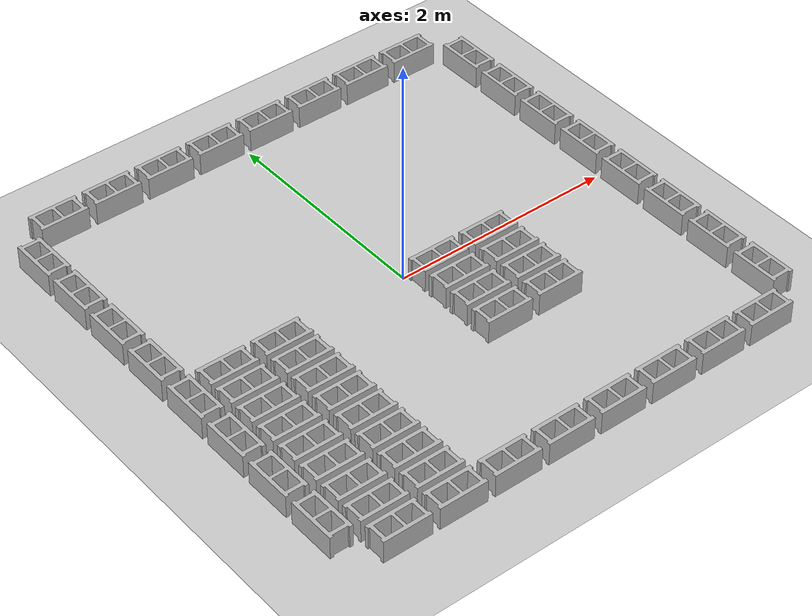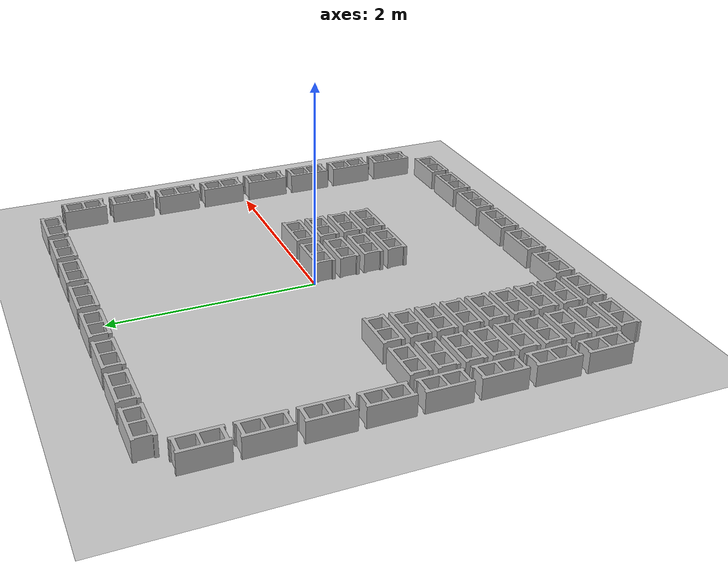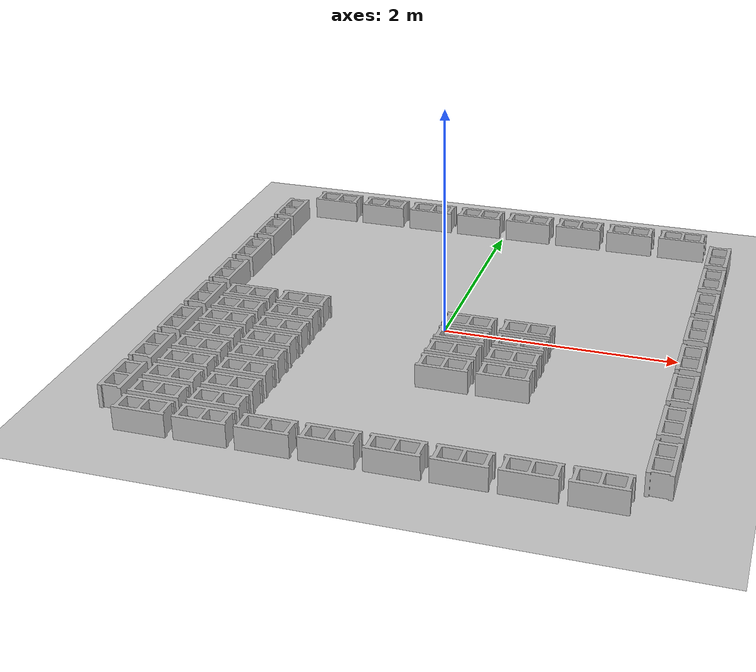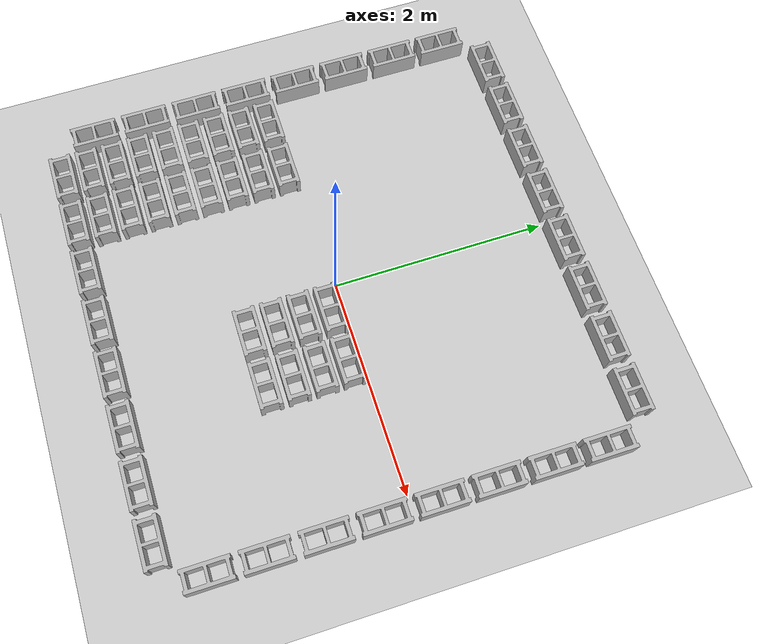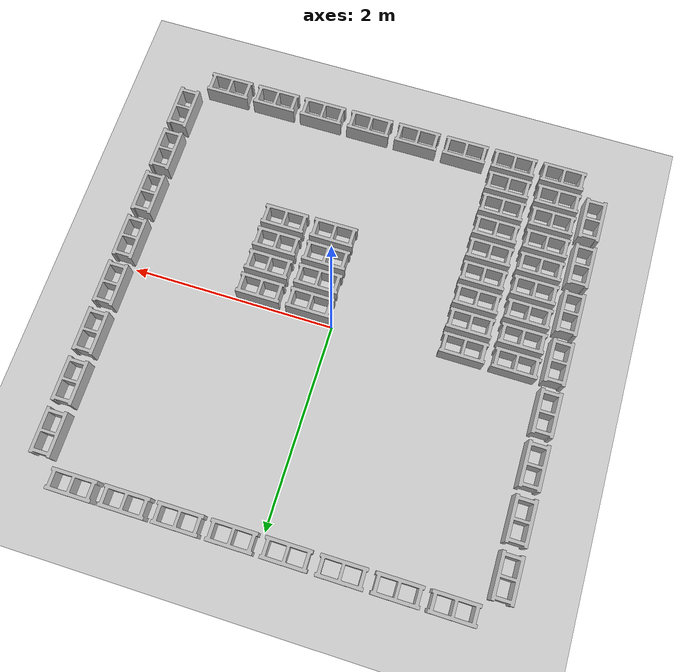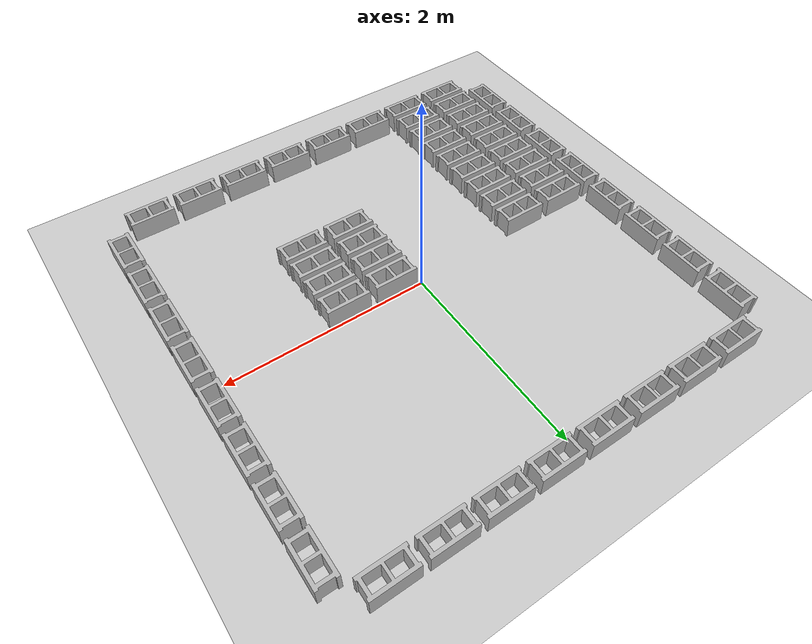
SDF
<?xml version="1.0" ?>
<sdf version='1.4'>
  <world name='default'>
    <!-- A global light source -->
    <include>
      <uri>model://sun</uri>
    </include>
    <!-- A ground plane -->
    <include>
      <uri>model://ground_plane</uri>
    </include>
    <!-- Own physics settings to speed up simulation -->
    <physics type='ode'>
      <max_step_size>0.01</max_step_size>
      <real_time_factor>1</real_time_factor>
      <real_time_update_rate>100</real_time_update_rate>
      <gravity>0 0 -9.8</gravity>
    </physics>
    <scene>
      <ambient>0.4 0.4 0.4 1</ambient>
      <background>0.7 0.7 0.7 1</background>
      <shadows>1</shadows>
    </scene>
    <spherical_coordinates>
      <surface_model>EARTH_WGS84</surface_model>
      <latitude_deg>0</latitude_deg>
      <longitude_deg>0</longitude_deg>
      <elevation>0</elevation>
      <heading_deg>0</heading_deg>
    </spherical_coordinates>
    <!-- INSERT: Bound and Obstacles here -->
    <model name='cinder_block_bound_1'>
      <include>
        <uri>model://cinder_block</uri>
      </include>
      <pose>-1.75 2.125 0 0 0 0</pose>
      <static>1</static>
    </model>
    <model name='cinder_block_bound_2'>
      <include>
        <uri>model://cinder_block</uri>
      </include>
      <pose>-1.25 2.125 0 0 0 0</pose>
      <static>1</static>
    </model>
    <model name='cinder_block_bound_3'>
      <include>
        <uri>model://cinder_block</uri>
      </include>
      <pose>-0.75 2.125 0 0 0 0</pose>
      <static>1</static>
    </model>
    <model name='cinder_block_bound_4'>
      <include>
        <uri>model://cinder_block</uri>
      </include>
      <pose>-0.25 2.125 0 0 0 0</pose>
      <static>1</static>
    </model>
    <model name='cinder_block_bound_5'>
      <include>
        <uri>model://cinder_block</uri>
      </include>
      <pose>0.25 2.125 0 0 0 0</pose>
      <static>1</static>
    </model>
    <model name='cinder_block_bound_6'>
      <include>
        <uri>model://cinder_block</uri>
      </include>
      <pose>0.75 2.125 0 0 0 0</pose>
      <static>1</static>
    </model>
    <model name='cinder_block_bound_7'>
      <include>
        <uri>model://cinder_block</uri>
      </include>
      <pose>1.25 2.125 0 0 0 0</pose>
      <static>1</static>
    </model>
    <model name='cinder_block_bound_8'>
      <include>
        <uri>model://cinder_block</uri>
      </include>
      <pose>1.75 2.125 0 0 0 0</pose>
      <static>1</static>
    </model>
    <model name='cinder_block_bound_9'>
      <include>
        <uri>model://cinder_block</uri>
      </include>
      <pose>2.125 1.75 0 0 0 1.5708</pose>
      <static>1</static>
    </model>
    <model name='cinder_block_bound_10'>
      <include>
        <uri>model://cinder_block</uri>
      </include>
      <pose>2.125 1.25 0 0 0 1.5708</pose>
      <static>1</static>
    </model>
    <model name='cinder_block_bound_11'>
      <include>
        <uri>model://cinder_block</uri>
      </include>
      <pose>2.125 0.75 0 0 0 1.5708</pose>
      <static>1</static>
    </model>
    <model name='cinder_block_bound_12'>
      <include>
        <uri>model://cinder_block</uri>
      </include>
      <pose>2.125 0.25 0 0 0 1.5708</pose>
      <static>1</static>
    </model>
    <model name='cinder_block_bound_13'>
      <include>
        <uri>model://cinder_block</uri>
      </include>
      <pose>2.125 -0.25 0 0 0 1.5708</pose>
      <static>1</static>
    </model>
    <model name='cinder_block_bound_14'>
      <include>
        <uri>model://cinder_block</uri>
      </include>
      <pose>2.125 -0.75 0 0 0 1.5708</pose>
      <static>1</static>
    </model>
    <model name='cinder_block_bound_15'>
      <include>
        <uri>model://cinder_block</uri>
      </include>
      <pose>2.125 -1.25 0 0 0 1.5708</pose>
      <static>1</static>
    </model>
    <model name='cinder_block_bound_16'>
      <include>
        <uri>model://cinder_block</uri>
      </include>
      <pose>2.125 -1.75 0 0 0 1.5708</pose>
      <static>1</static>
    </model>
    <model name='cinder_block_bound_17'>
      <include>
        <uri>model://cinder_block</uri>
      </include>
      <pose>1.75 -2.125 0 0 0 0</pose>
      <static>1</static>
    </model>
    <model name='cinder_block_bound_18'>
      <include>
        <uri>model://cinder_block</uri>
      </include>
      <pose>1.25 -2.125 0 0 0 0</pose>
      <static>1</static>
    </model>
    <model name='cinder_block_bound_19'>
      <include>
        <uri>model://cinder_block</uri>
      </include>
      <pose>0.75 -2.125 0 0 0 0</pose>
      <static>1</static>
    </model>
    <model name='cinder_block_bound_20'>
      <include>
        <uri>model://cinder_block</uri>
      </include>
      <pose>0.25 -2.125 0 0 0 0</pose>
      <static>1</static>
    </model>
    <model name='cinder_block_bound_21'>
      <include>
        <uri>model://cinder_block</uri>
      </include>
      <pose>-0.25 -2.125 0 0 0 0</pose>
      <static>1</static>
    </model>
    <model name='cinder_block_bound_22'>
      <include>
        <uri>model://cinder_block</uri>
      </include>
      <pose>-0.75 -2.125 0 0 0 0</pose>
      <static>1</static>
    </model>
    <model name='cinder_block_bound_23'>
      <include>
        <uri>model://cinder_block</uri>
      </include>
      <pose>-1.25 -2.125 0 0 0 0</pose>
      <static>1</static>
    </model>
    <model name='cinder_block_bound_24'>
      <include>
        <uri>model://cinder_block</uri>
      </include>
      <pose>-1.75 -2.125 0 0 0 0</pose>
      <static>1</static>
    </model>
    <model name='cinder_block_bound_25'>
      <include>
        <uri>model://cinder_block</uri>
      </include>
      <pose>-2.125 -1.75 0 0 0 1.5708</pose>
      <static>1</static>
    </model>
    <model name='cinder_block_bound_26'>
      <include>
        <uri>model://cinder_block</uri>
      </include>
      <pose>-2.125 -1.25 0 0 0 1.5708</pose>
      <static>1</static>
    </model>
    <model name='cinder_block_bound_27'>
      <include>
        <uri>model://cinder_block</uri>
      </include>
      <pose>-2.125 -0.75 0 0 0 1.5708</pose>
      <static>1</static>
    </model>
    <model name='cinder_block_bound_28'>
      <include>
        <uri>model://cinder_block</uri>
      </include>
      <pose>-2.125 -0.25 0 0 0 1.5708</pose>
      <static>1</static>
    </model>
    <model name='cinder_block_bound_29'>
      <include>
        <uri>model://cinder_block</uri>
      </include>
      <pose>-2.125 0.25 0 0 0 1.5708</pose>
      <static>1</static>
    </model>
    <model name='cinder_block_bound_30'>
      <include>
        <uri>model://cinder_block</uri>
      </include>
      <pose>-2.125 0.75 0 0 0 1.5708</pose>
      <static>1</static>
    </model>
    <model name='cinder_block_bound_31'>
      <include>
        <uri>model://cinder_block</uri>
      </include>
      <pose>-2.125 1.25 0 0 0 1.5708</pose>
      <static>1</static>
    </model>
    <model name='cinder_block_bound_32'>
      <include>
        <uri>model://cinder_block</uri>
      </include>
      <pose>-2.125 1.75 0 0 0 1.5708</pose>
      <static>1</static>
    </model>
    <model name='cinder_block_obstacle_1_1'>
      <include>
        <uri>model://cinder_block</uri>
      </include>
      <pose>0.25 -0.875 0 0 0 0</pose>
      <static>1</static>
    </model>
    <model name='cinder_block_obstacle_1_1'>
      <include>
        <uri>model://cinder_block</uri>
      </include>
      <pose>0.25 -0.625 0 0 0 0</pose>
      <static>1</static>
    </model>
    <model name='cinder_block_obstacle_1_1'>
      <include>
        <uri>model://cinder_block</uri>
      </include>
      <pose>0.25 -0.375 0 0 0 0</pose>
      <static>1</static>
    </model>
    <model name='cinder_block_obstacle_1_1'>
      <include>
        <uri>model://cinder_block</uri>
      </include>
      <pose>0.25 -0.125 0 0 0 0</pose>
      <static>1</static>
    </model>
    <model name='cinder_block_obstacle_1_2'>
      <include>
        <uri>model://cinder_block</uri>
      </include>
      <pose>0.75 -0.875 0 0 0 0</pose>
      <static>1</static>
    </model>
    <model name='cinder_block_obstacle_1_2'>
      <include>
        <uri>model://cinder_block</uri>
      </include>
      <pose>0.75 -0.625 0 0 0 0</pose>
      <static>1</static>
    </model>
    <model name='cinder_block_obstacle_1_2'>
      <include>
        <uri>model://cinder_block</uri>
      </include>
      <pose>0.75 -0.375 0 0 0 0</pose>
      <static>1</static>
    </model>
    <model name='cinder_block_obstacle_1_2'>
      <include>
        <uri>model://cinder_block</uri>
      </include>
      <pose>0.75 -0.125 0 0 0 0</pose>
      <static>1</static>
    </model>
    <model name='cinder_block_obstacle_2_1'>
      <include>
        <uri>model://cinder_block</uri>
      </include>
      <pose>-1.75 -0.875 0 0 0 0</pose>
      <static>1</static>
    </model>
    <model name='cinder_block_obstacle_2_1'>
      <include>
        <uri>model://cinder_block</uri>
      </include>
      <pose>-1.75 -0.625 0 0 0 0</pose>
      <static>1</static>
    </model>
    <model name='cinder_block_obstacle_2_1'>
      <include>
        <uri>model://cinder_block</uri>
      </include>
      <pose>-1.75 -0.375 0 0 0 0</pose>
      <static>1</static>
    </model>
    <model name='cinder_block_obstacle_2_1'>
      <include>
        <uri>model://cinder_block</uri>
      </include>
      <pose>-1.75 -0.125 0 0 0 0</pose>
      <static>1</static>
    </model>
    <model name='cinder_block_obstacle_2_2'>
      <include>
        <uri>model://cinder_block</uri>
      </include>
      <pose>-1.25 -0.875 0 0 0 0</pose>
      <static>1</static>
    </model>
    <model name='cinder_block_obstacle_2_2'>
      <include>
        <uri>model://cinder_block</uri>
      </include>
      <pose>-1.25 -0.625 0 0 0 0</pose>
      <static>1</static>
    </model>
    <model name='cinder_block_obstacle_2_2'>
      <include>
        <uri>model://cinder_block</uri>
      </include>
      <pose>-1.25 -0.375 0 0 0 0</pose>
      <static>1</static>
    </model>
    <model name='cinder_block_obstacle_2_2'>
      <include>
        <uri>model://cinder_block</uri>
      </include>
      <pose>-1.25 -0.125 0 0 0 0</pose>
      <static>1</static>
    </model>
    <model name='cinder_block_obstacle_3_1'>
      <include>
        <uri>model://cinder_block</uri>
      </include>
      <pose>-1.75 -1.875 0 0 0 0</pose>
      <static>1</static>
    </model>
    <model name='cinder_block_obstacle_3_1'>
      <include>
        <uri>model://cinder_block</uri>
      </include>
      <pose>-1.75 -1.625 0 0 0 0</pose>
      <static>1</static>
    </model>
    <model name='cinder_block_obstacle_3_1'>
      <include>
        <uri>model://cinder_block</uri>
      </include>
      <pose>-1.75 -1.375 0 0 0 0</pose>
      <static>1</static>
    </model>
    <model name='cinder_block_obstacle_3_1'>
      <include>
        <uri>model://cinder_block</uri>
      </include>
      <pose>-1.75 -1.125 0 0 0 0</pose>
      <static>1</static>
    </model>
    <model name='cinder_block_obstacle_3_2'>
      <include>
        <uri>model://cinder_block</uri>
      </include>
      <pose>-1.25 -1.875 0 0 0 0</pose>
      <static>1</static>
    </model>
    <model name='cinder_block_obstacle_3_2'>
      <include>
        <uri>model://cinder_block</uri>
      </include>
      <pose>-1.25 -1.625 0 0 0 0</pose>
      <static>1</static>
    </model>
    <model name='cinder_block_obstacle_3_2'>
      <include>
        <uri>model://cinder_block</uri>
      </include>
      <pose>-1.25 -1.375 0 0 0 0</pose>
      <static>1</static>
    </model>
    <model name='cinder_block_obstacle_3_2'>
      <include>
        <uri>model://cinder_block</uri>
      </include>
      <pose>-1.25 -1.125 0 0 0 0</pose>
      <static>1</static>
    </model>
    <gui fullscreen='0'>
      <camera name='user_camera'>
        <pose>0 0 10 0 1.57079 1.57079</pose>
        <view_controller>orbit</view_controller>
      </camera>
    </gui>
  </world>
</sdf>

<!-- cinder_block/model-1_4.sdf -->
<sdf version="1.4">
  <model name="cinder_block">
    <link name="link">
      <inertial>
        <pose>0 0 0.1016  0 0 0</pose>
        <!-- volume about 0.0085 m^3, density 2000 kg/m^3 -->
        <mass>1</mass>
        <!-- approximate as uniform box 0.37 x 0.17 x 0.20 m -->
        <inertia>
          <ixx>0.028705</ixx>
          <ixy>0.0000</ixy><iyy>0.073708</iyy>
          <ixz>0.0000</ixz><iyz>0.0000</iyz><izz>0.06908</izz>
        </inertia>
      </inertial>
      <visual name="visual">
        <geometry>
          <mesh>
            <uri>model://cinder_block/meshes/cinder_block.dae</uri>
          </mesh>
        </geometry>
      </visual>

      <collision name="left">
        <pose>0 -0.08465 0.1016 0 0 0</pose>
        <geometry>
          <box>
            <size>0.43495 0.0339 0.2032</size>
          </box>
        </geometry>
        <surface>
          <contact>
            <ode>
              <max_vel>0.1</max_vel>
              <min_depth>0.001</min_depth>
            </ode>
          </contact>
          <friction>
            <ode>
              <mu>1.0</mu>
              <mu2>1.0</mu2>
            </ode>
          </friction>
        </surface>
      </collision>

      <collision name="right">
        <pose>0 0.08465 0.1016 0 0 0</pose>
        <geometry>
          <box>
            <size>0.43495 0.0339 0.2032</size>
          </box>
        </geometry>
        <surface>
          <contact>
            <ode>
              <max_vel>0.1</max_vel>
              <min_depth>0.001</min_depth>
            </ode>
          </contact>
          <friction>
            <ode>
              <mu>1.0</mu>
              <mu2>1.0</mu2>
            </ode>
          </friction>
        </surface>
      </collision>

      <collision name="front">
        <pose>0.18625 0 0.1016 0 0 0</pose>
        <geometry>
          <box>
            <size>0.0339 0.1354  0.203</size>
          </box>
        </geometry>
        <surface>
          <contact>
            <ode>
              <max_vel>0.1</max_vel>
              <min_depth>0.001</min_depth>
            </ode>
          </contact>
          <friction>
            <ode>
              <mu>1.0</mu>
              <mu2>1.0</mu2>
            </ode>
          </friction>
        </surface>
      </collision>

      <collision name="middle">
        <pose>0 0 0.1016 0 0 0</pose>
        <geometry>
          <box>
            <size>0.0339 0.1354  0.203</size>
          </box>
        </geometry>
        <surface>
          <contact>
            <ode>
              <max_vel>0.1</max_vel>
              <min_depth>0.001</min_depth>
            </ode>
          </contact>
          <friction>
            <ode>
              <mu>1.0</mu>
              <mu2>1.0</mu2>
            </ode>
          </friction>
        </surface>
      </collision>

      <collision name="back">
        <pose>-0.18625 0 0.1016 0 0 0</pose>
        <geometry>
          <box>
            <size>0.0339 0.1354  0.203</size>
          </box>
        </geometry>
        <surface>
          <contact>
            <ode>
              <max_vel>0.1</max_vel>
              <min_depth>0.001</min_depth>
            </ode>
          </contact>
          <friction>
            <ode>
              <mu>1.0</mu>
              <mu2>1.0</mu2>
            </ode>
          </friction>
        </surface>
      </collision>

    </link>
  </model>
</sdf>
